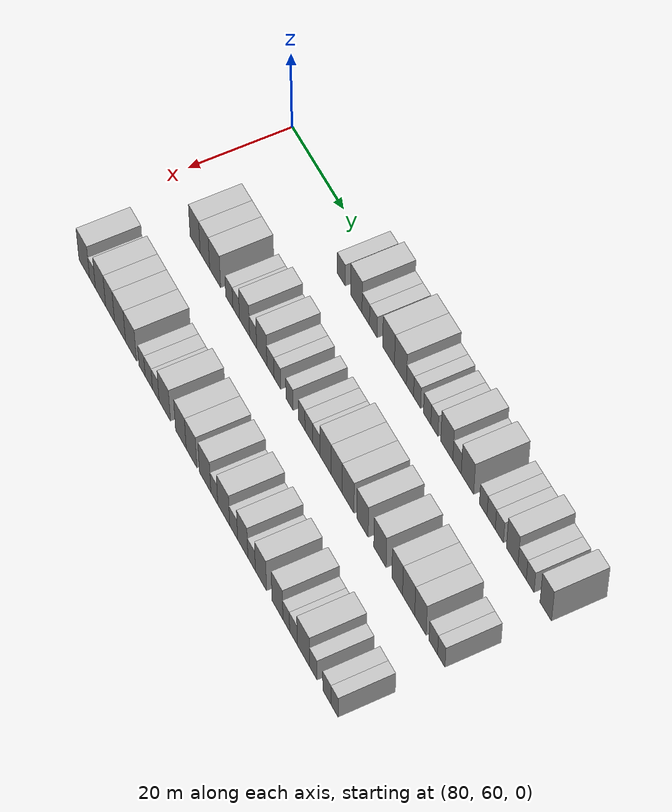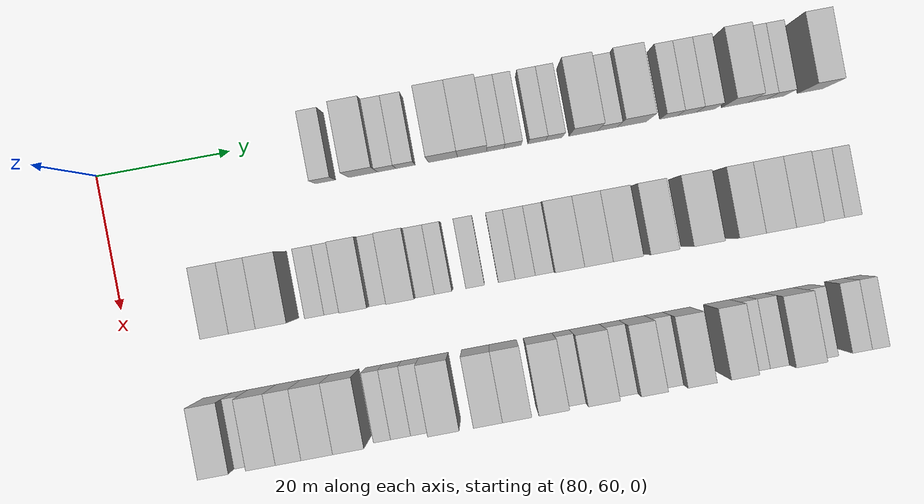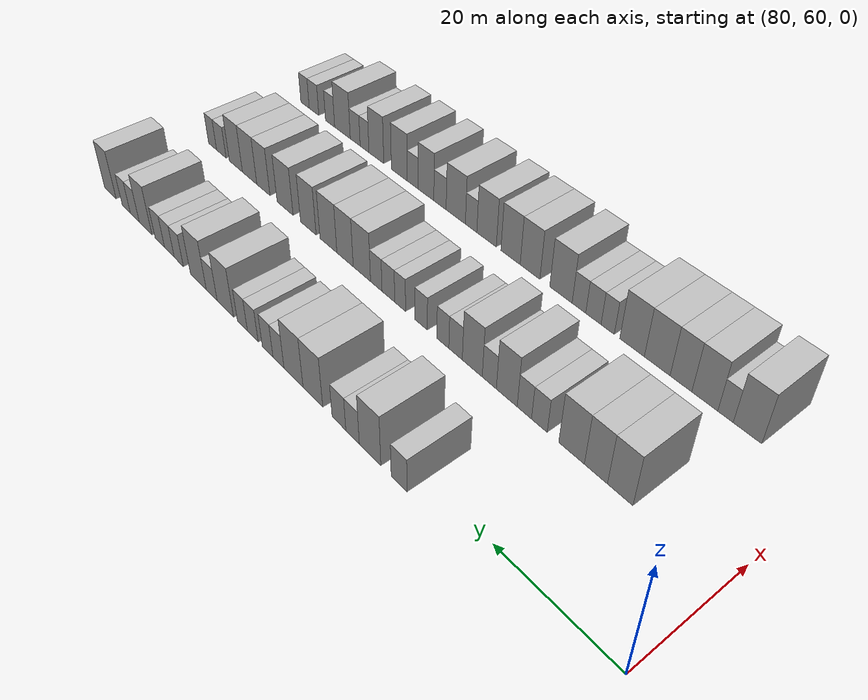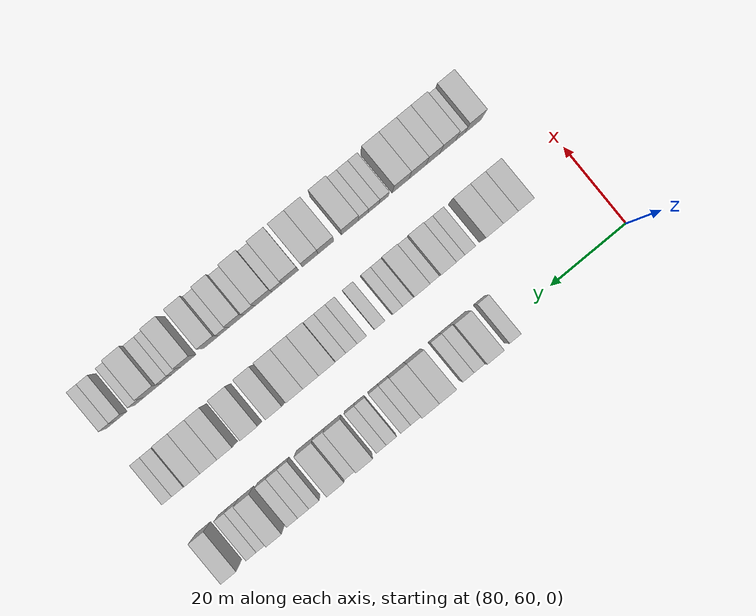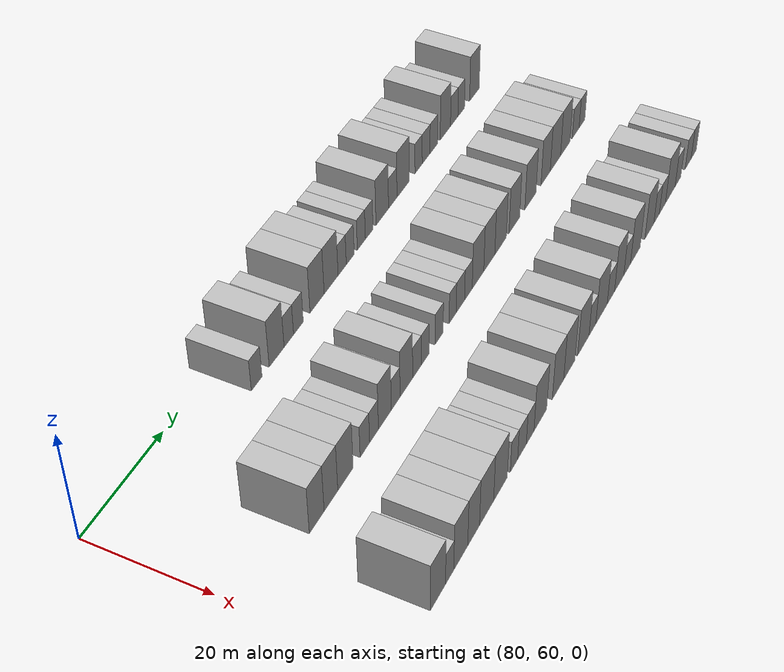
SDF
<sdf version="1.6">
 <world name="default">
  <model name="building_637">
   <static>1</static>
   <pose>82.0000 93.1018 0 0.000000 0.000000 0.000000</pose>
   <link name="link">
    <pose>0 0 3.00 0 0 0</pose>
    <collision name="collision"><geometry><box><size>10.0000 2.9825 6.0000</size></box></geometry></collision>
    <visual name="visual">
     <cast_shadows>0</cast_shadows>
     <geometry><box><size>10.0000 2.9825 6.0000</size></box></geometry>
     <material>
      <script>
       <uri>model://HANNAS_wall/materials/scripts</uri>
       <uri>model://HANNAS_wall/materials/textures</uri>
       <name>vrc/HANNAS_wall</name>
      </script>
     </material>
    </visual>
   </link>
  </model>
  <model name="building_638">
   <static>1</static>
   <pose>82.0000 98.7321 0 0.000000 0.000000 0.000000</pose>
   <link name="link">
    <pose>0 0 4.50 0 0 0</pose>
    <collision name="collision"><geometry><box><size>10.0000 4.2781 9.0000</size></box></geometry></collision>
    <visual name="visual">
     <cast_shadows>0</cast_shadows>
     <geometry><box><size>10.0000 4.2781 9.0000</size></box></geometry>
     <material>
      <script>
       <uri>model://HANNAS_wall/materials/scripts</uri>
       <uri>model://HANNAS_wall/materials/textures</uri>
       <name>vrc/HANNAS_wall</name>
      </script>
     </material>
    </visual>
   </link>
  </model>
  <model name="building_639">
   <static>1</static>
   <pose>82.0000 102.2489 0 0.000000 0.000000 0.000000</pose>
   <link name="link">
    <pose>0 0 3.00 0 0 0</pose>
    <collision name="collision"><geometry><box><size>10.0000 2.7553 6.0000</size></box></geometry></collision>
    <visual name="visual">
     <cast_shadows>0</cast_shadows>
     <geometry><box><size>10.0000 2.7553 6.0000</size></box></geometry>
     <material>
      <script>
       <uri>model://HANNAS_wall/materials/scripts</uri>
       <uri>model://HANNAS_wall/materials/textures</uri>
       <name>vrc/HANNAS_wall</name>
      </script>
     </material>
    </visual>
   </link>
  </model>
  <model name="building_640">
   <static>1</static>
   <pose>82.0000 105.0680 0 0.000000 0.000000 0.000000</pose>
   <link name="link">
    <pose>0 0 3.00 0 0 0</pose>
    <collision name="collision"><geometry><box><size>10.0000 2.8829 6.0000</size></box></geometry></collision>
    <visual name="visual">
     <cast_shadows>0</cast_shadows>
     <geometry><box><size>10.0000 2.8829 6.0000</size></box></geometry>
     <material>
      <script>
       <uri>model://HANNAS_wall/materials/scripts</uri>
       <uri>model://HANNAS_wall/materials/textures</uri>
       <name>vrc/HANNAS_wall</name>
      </script>
     </material>
    </visual>
   </link>
  </model>
  <model name="building_641">
   <static>1</static>
   <pose>82.0000 110.6773 0 0.000000 0.000000 0.000000</pose>
   <link name="link">
    <pose>0 0 4.50 0 0 0</pose>
    <collision name="collision"><geometry><box><size>10.0000 4.3356 9.0000</size></box></geometry></collision>
    <visual name="visual">
     <cast_shadows>0</cast_shadows>
     <geometry><box><size>10.0000 4.3356 9.0000</size></box></geometry>
     <material>
      <script>
       <uri>model://HANNAS_wall/materials/scripts</uri>
       <uri>model://HANNAS_wall/materials/textures</uri>
       <name>vrc/HANNAS_wall</name>
      </script>
     </material>
    </visual>
   </link>
  </model>
  <model name="building_642">
   <static>1</static>
   <pose>82.0000 115.0197 0 0.000000 0.000000 0.000000</pose>
   <link name="link">
    <pose>0 0 4.50 0 0 0</pose>
    <collision name="collision"><geometry><box><size>10.0000 4.3493 9.0000</size></box></geometry></collision>
    <visual name="visual">
     <cast_shadows>0</cast_shadows>
     <geometry><box><size>10.0000 4.3493 9.0000</size></box></geometry>
     <material>
      <script>
       <uri>model://HANNAS_wall/materials/scripts</uri>
       <uri>model://HANNAS_wall/materials/textures</uri>
       <name>vrc/HANNAS_wall</name>
      </script>
     </material>
    </visual>
   </link>
  </model>
  <model name="building_643">
   <static>1</static>
   <pose>82.0000 118.4936 0 0.000000 0.000000 0.000000</pose>
   <link name="link">
    <pose>0 0 3.00 0 0 0</pose>
    <collision name="collision"><geometry><box><size>10.0000 2.5984 6.0000</size></box></geometry></collision>
    <visual name="visual">
     <cast_shadows>0</cast_shadows>
     <geometry><box><size>10.0000 2.5984 6.0000</size></box></geometry>
     <material>
      <script>
       <uri>model://HANNAS_wall/materials/scripts</uri>
       <uri>model://HANNAS_wall/materials/textures</uri>
       <name>vrc/HANNAS_wall</name>
      </script>
     </material>
    </visual>
   </link>
  </model>
  <model name="building_644">
   <static>1</static>
   <pose>82.0000 121.0690 0 0.000000 0.000000 0.000000</pose>
   <link name="link">
    <pose>0 0 3.00 0 0 0</pose>
    <collision name="collision"><geometry><box><size>10.0000 2.5523 6.0000</size></box></geometry></collision>
    <visual name="visual">
     <cast_shadows>0</cast_shadows>
     <geometry><box><size>10.0000 2.5523 6.0000</size></box></geometry>
     <material>
      <script>
       <uri>model://HANNAS_wall/materials/scripts</uri>
       <uri>model://HANNAS_wall/materials/textures</uri>
       <name>vrc/HANNAS_wall</name>
      </script>
     </material>
    </visual>
   </link>
  </model>
  <model name="building_645">
   <static>1</static>
   <pose>82.0000 124.6722 0 0.000000 0.000000 0.000000</pose>
   <link name="link">
    <pose>0 0 3.00 0 0 0</pose>
    <collision name="collision"><geometry><box><size>10.0000 2.6542 6.0000</size></box></geometry></collision>
    <visual name="visual">
     <cast_shadows>0</cast_shadows>
     <geometry><box><size>10.0000 2.6542 6.0000</size></box></geometry>
     <material>
      <script>
       <uri>model://HANNAS_wall/materials/scripts</uri>
       <uri>model://HANNAS_wall/materials/textures</uri>
       <name>vrc/HANNAS_wall</name>
      </script>
     </material>
    </visual>
   </link>
  </model>
  <model name="building_646">
   <static>1</static>
   <pose>82.0000 127.2602 0 0.000000 0.000000 0.000000</pose>
   <link name="link">
    <pose>0 0 3.00 0 0 0</pose>
    <collision name="collision"><geometry><box><size>10.0000 2.5218 6.0000</size></box></geometry></collision>
    <visual name="visual">
     <cast_shadows>0</cast_shadows>
     <geometry><box><size>10.0000 2.5218 6.0000</size></box></geometry>
     <material>
      <script>
       <uri>model://HANNAS_wall/materials/scripts</uri>
       <uri>model://HANNAS_wall/materials/textures</uri>
       <name>vrc/HANNAS_wall</name>
      </script>
     </material>
    </visual>
   </link>
  </model>
  <model name="building_647">
   <static>1</static>
   <pose>82.0000 131.6609 0 0.000000 0.000000 0.000000</pose>
   <link name="link">
    <pose>0 0 4.50 0 0 0</pose>
    <collision name="collision"><geometry><box><size>10.0000 4.2797 9.0000</size></box></geometry></collision>
    <visual name="visual">
     <cast_shadows>0</cast_shadows>
     <geometry><box><size>10.0000 4.2797 9.0000</size></box></geometry>
     <material>
      <script>
       <uri>model://HANNAS_wall/materials/scripts</uri>
       <uri>model://HANNAS_wall/materials/textures</uri>
       <name>vrc/HANNAS_wall</name>
      </script>
     </material>
    </visual>
   </link>
  </model>
  <model name="building_648">
   <static>1</static>
   <pose>82.0000 135.2643 0 0.000000 0.000000 0.000000</pose>
   <link name="link">
    <pose>0 0 3.00 0 0 0</pose>
    <collision name="collision"><geometry><box><size>10.0000 2.9271 6.0000</size></box></geometry></collision>
    <visual name="visual">
     <cast_shadows>0</cast_shadows>
     <geometry><box><size>10.0000 2.9271 6.0000</size></box></geometry>
     <material>
      <script>
       <uri>model://HANNAS_wall/materials/scripts</uri>
       <uri>model://HANNAS_wall/materials/textures</uri>
       <name>vrc/HANNAS_wall</name>
      </script>
     </material>
    </visual>
   </link>
  </model>
  <model name="building_649">
   <static>1</static>
   <pose>82.0000 138.9068 0 0.000000 0.000000 0.000000</pose>
   <link name="link">
    <pose>0 0 4.50 0 0 0</pose>
    <collision name="collision"><geometry><box><size>10.0000 4.3579 9.0000</size></box></geometry></collision>
    <visual name="visual">
     <cast_shadows>0</cast_shadows>
     <geometry><box><size>10.0000 4.3579 9.0000</size></box></geometry>
     <material>
      <script>
       <uri>model://HANNAS_wall/materials/scripts</uri>
       <uri>model://HANNAS_wall/materials/textures</uri>
       <name>vrc/HANNAS_wall</name>
      </script>
     </material>
    </visual>
   </link>
  </model>
  <model name="building_650">
   <static>1</static>
   <pose>82.0000 144.3948 0 0.000000 0.000000 0.000000</pose>
   <link name="link">
    <pose>0 0 3.00 0 0 0</pose>
    <collision name="collision"><geometry><box><size>10.0000 2.6181 6.0000</size></box></geometry></collision>
    <visual name="visual">
     <cast_shadows>0</cast_shadows>
     <geometry><box><size>10.0000 2.6181 6.0000</size></box></geometry>
     <material>
      <script>
       <uri>model://HANNAS_wall/materials/scripts</uri>
       <uri>model://HANNAS_wall/materials/textures</uri>
       <name>vrc/HANNAS_wall</name>
      </script>
     </material>
    </visual>
   </link>
  </model>
  <model name="building_651">
   <static>1</static>
   <pose>82.0000 147.1293 0 0.000000 0.000000 0.000000</pose>
   <link name="link">
    <pose>0 0 3.00 0 0 0</pose>
    <collision name="collision"><geometry><box><size>10.0000 2.8510 6.0000</size></box></geometry></collision>
    <visual name="visual">
     <cast_shadows>0</cast_shadows>
     <geometry><box><size>10.0000 2.8510 6.0000</size></box></geometry>
     <material>
      <script>
       <uri>model://HANNAS_wall/materials/scripts</uri>
       <uri>model://HANNAS_wall/materials/textures</uri>
       <name>vrc/HANNAS_wall</name>
      </script>
     </material>
    </visual>
   </link>
  </model>
  <model name="building_652">
   <static>1</static>
   <pose>82.0000 149.9562 0 0.000000 0.000000 0.000000</pose>
   <link name="link">
    <pose>0 0 3.00 0 0 0</pose>
    <collision name="collision"><geometry><box><size>10.0000 2.8028 6.0000</size></box></geometry></collision>
    <visual name="visual">
     <cast_shadows>0</cast_shadows>
     <geometry><box><size>10.0000 2.8028 6.0000</size></box></geometry>
     <material>
      <script>
       <uri>model://HANNAS_wall/materials/scripts</uri>
       <uri>model://HANNAS_wall/materials/textures</uri>
       <name>vrc/HANNAS_wall</name>
      </script>
     </material>
    </visual>
   </link>
  </model>
  <model name="building_653">
   <static>1</static>
   <pose>82.0000 154.3159 0 0.000000 0.000000 0.000000</pose>
   <link name="link">
    <pose>0 0 4.50 0 0 0</pose>
    <collision name="collision"><geometry><box><size>10.0000 3.9167 9.0000</size></box></geometry></collision>
    <visual name="visual">
     <cast_shadows>0</cast_shadows>
     <geometry><box><size>10.0000 3.9167 9.0000</size></box></geometry>
     <material>
      <script>
       <uri>model://HANNAS_wall/materials/scripts</uri>
       <uri>model://HANNAS_wall/materials/textures</uri>
       <name>vrc/HANNAS_wall</name>
      </script>
     </material>
    </visual>
   </link>
  </model>
  <model name="building_654">
   <static>1</static>
   <pose>82.0000 157.6929 0 0.000000 0.000000 0.000000</pose>
   <link name="link">
    <pose>0 0 3.00 0 0 0</pose>
    <collision name="collision"><geometry><box><size>10.0000 2.8373 6.0000</size></box></geometry></collision>
    <visual name="visual">
     <cast_shadows>0</cast_shadows>
     <geometry><box><size>10.0000 2.8373 6.0000</size></box></geometry>
     <material>
      <script>
       <uri>model://HANNAS_wall/materials/scripts</uri>
       <uri>model://HANNAS_wall/materials/textures</uri>
       <name>vrc/HANNAS_wall</name>
      </script>
     </material>
    </visual>
   </link>
  </model>
  <model name="building_655">
   <static>1</static>
   <pose>82.0000 160.4118 0 0.000000 0.000000 0.000000</pose>
   <link name="link">
    <pose>0 0 3.00 0 0 0</pose>
    <collision name="collision"><geometry><box><size>10.0000 2.6006 6.0000</size></box></geometry></collision>
    <visual name="visual">
     <cast_shadows>0</cast_shadows>
     <geometry><box><size>10.0000 2.6006 6.0000</size></box></geometry>
     <material>
      <script>
       <uri>model://HANNAS_wall/materials/scripts</uri>
       <uri>model://HANNAS_wall/materials/textures</uri>
       <name>vrc/HANNAS_wall</name>
      </script>
     </material>
    </visual>
   </link>
  </model>
  <model name="building_656">
   <static>1</static>
   <pose>82.0000 165.6346 0 0.000000 0.000000 0.000000</pose>
   <link name="link">
    <pose>0 0 4.50 0 0 0</pose>
    <collision name="collision"><geometry><box><size>10.0000 3.8449 9.0000</size></box></geometry></collision>
    <visual name="visual">
     <cast_shadows>0</cast_shadows>
     <geometry><box><size>10.0000 3.8449 9.0000</size></box></geometry>
     <material>
      <script>
       <uri>model://HANNAS_wall/materials/scripts</uri>
       <uri>model://HANNAS_wall/materials/textures</uri>
       <name>vrc/HANNAS_wall</name>
      </script>
     </material>
    </visual>
   </link>
  </model>
  <model name="building_811">
   <static>1</static>
   <pose>101.0000 75.4215 0 0.000000 0.000000 0.000000</pose>
   <link name="link">
    <pose>0 0 4.50 0 0 0</pose>
    <collision name="collision"><geometry><box><size>10.0000 4.0051 9.0000</size></box></geometry></collision>
    <visual name="visual">
     <cast_shadows>0</cast_shadows>
     <geometry><box><size>10.0000 4.0051 9.0000</size></box></geometry>
     <material>
      <script>
       <uri>model://HANNAS_wall/materials/scripts</uri>
       <uri>model://HANNAS_wall/materials/textures</uri>
       <name>vrc/HANNAS_wall</name>
      </script>
     </material>
    </visual>
   </link>
  </model>
  <model name="building_812">
   <static>1</static>
   <pose>101.0000 79.3054 0 0.000000 0.000000 0.000000</pose>
   <link name="link">
    <pose>0 0 4.50 0 0 0</pose>
    <collision name="collision"><geometry><box><size>10.0000 3.7627 9.0000</size></box></geometry></collision>
    <visual name="visual">
     <cast_shadows>0</cast_shadows>
     <geometry><box><size>10.0000 3.7627 9.0000</size></box></geometry>
     <material>
      <script>
       <uri>model://HANNAS_wall/materials/scripts</uri>
       <uri>model://HANNAS_wall/materials/textures</uri>
       <name>vrc/HANNAS_wall</name>
      </script>
     </material>
    </visual>
   </link>
  </model>
  <model name="building_813">
   <static>1</static>
   <pose>101.0000 83.3498 0 0.000000 0.000000 0.000000</pose>
   <link name="link">
    <pose>0 0 4.50 0 0 0</pose>
    <collision name="collision"><geometry><box><size>10.0000 4.3261 9.0000</size></box></geometry></collision>
    <visual name="visual">
     <cast_shadows>0</cast_shadows>
     <geometry><box><size>10.0000 4.3261 9.0000</size></box></geometry>
     <material>
      <script>
       <uri>model://HANNAS_wall/materials/scripts</uri>
       <uri>model://HANNAS_wall/materials/textures</uri>
       <name>vrc/HANNAS_wall</name>
      </script>
     </material>
    </visual>
   </link>
  </model>
  <model name="building_814">
   <static>1</static>
   <pose>101.0000 88.9017 0 0.000000 0.000000 0.000000</pose>
   <link name="link">
    <pose>0 0 3.00 0 0 0</pose>
    <collision name="collision"><geometry><box><size>10.0000 2.7778 6.0000</size></box></geometry></collision>
    <visual name="visual">
     <cast_shadows>0</cast_shadows>
     <geometry><box><size>10.0000 2.7778 6.0000</size></box></geometry>
     <material>
      <script>
       <uri>model://HANNAS_wall/materials/scripts</uri>
       <uri>model://HANNAS_wall/materials/textures</uri>
       <name>vrc/HANNAS_wall</name>
      </script>
     </material>
    </visual>
   </link>
  </model>
  <model name="building_815">
   <static>1</static>
   <pose>101.0000 91.5942 0 0.000000 0.000000 0.000000</pose>
   <link name="link">
    <pose>0 0 3.00 0 0 0</pose>
    <collision name="collision"><geometry><box><size>10.0000 2.6072 6.0000</size></box></geometry></collision>
    <visual name="visual">
     <cast_shadows>0</cast_shadows>
     <geometry><box><size>10.0000 2.6072 6.0000</size></box></geometry>
     <material>
      <script>
       <uri>model://HANNAS_wall/materials/scripts</uri>
       <uri>model://HANNAS_wall/materials/textures</uri>
       <name>vrc/HANNAS_wall</name>
      </script>
     </material>
    </visual>
   </link>
  </model>
  <model name="building_816">
   <static>1</static>
   <pose>101.0000 94.8370 0 0.000000 0.000000 0.000000</pose>
   <link name="link">
    <pose>0 0 4.50 0 0 0</pose>
    <collision name="collision"><geometry><box><size>10.0000 3.8783 9.0000</size></box></geometry></collision>
    <visual name="visual">
     <cast_shadows>0</cast_shadows>
     <geometry><box><size>10.0000 3.8783 9.0000</size></box></geometry>
     <material>
      <script>
       <uri>model://HANNAS_wall/materials/scripts</uri>
       <uri>model://HANNAS_wall/materials/textures</uri>
       <name>vrc/HANNAS_wall</name>
      </script>
     </material>
    </visual>
   </link>
  </model>
  <model name="building_817">
   <static>1</static>
   <pose>101.0000 98.1280 0 0.000000 0.000000 0.000000</pose>
   <link name="link">
    <pose>0 0 3.00 0 0 0</pose>
    <collision name="collision"><geometry><box><size>10.0000 2.7037 6.0000</size></box></geometry></collision>
    <visual name="visual">
     <cast_shadows>0</cast_shadows>
     <geometry><box><size>10.0000 2.7037 6.0000</size></box></geometry>
     <material>
      <script>
       <uri>model://HANNAS_wall/materials/scripts</uri>
       <uri>model://HANNAS_wall/materials/textures</uri>
       <name>vrc/HANNAS_wall</name>
      </script>
     </material>
    </visual>
   </link>
  </model>
  <model name="building_818">
   <static>1</static>
   <pose>101.0000 101.4447 0 0.000000 0.000000 0.000000</pose>
   <link name="link">
    <pose>0 0 4.50 0 0 0</pose>
    <collision name="collision"><geometry><box><size>10.0000 3.9298 9.0000</size></box></geometry></collision>
    <visual name="visual">
     <cast_shadows>0</cast_shadows>
     <geometry><box><size>10.0000 3.9298 9.0000</size></box></geometry>
     <material>
      <script>
       <uri>model://HANNAS_wall/materials/scripts</uri>
       <uri>model://HANNAS_wall/materials/textures</uri>
       <name>vrc/HANNAS_wall</name>
      </script>
     </material>
    </visual>
   </link>
  </model>
  <model name="building_819">
   <static>1</static>
   <pose>101.0000 104.7713 0 0.000000 0.000000 0.000000</pose>
   <link name="link">
    <pose>0 0 3.00 0 0 0</pose>
    <collision name="collision"><geometry><box><size>10.0000 2.7233 6.0000</size></box></geometry></collision>
    <visual name="visual">
     <cast_shadows>0</cast_shadows>
     <geometry><box><size>10.0000 2.7233 6.0000</size></box></geometry>
     <material>
      <script>
       <uri>model://HANNAS_wall/materials/scripts</uri>
       <uri>model://HANNAS_wall/materials/textures</uri>
       <name>vrc/HANNAS_wall</name>
      </script>
     </material>
    </visual>
   </link>
  </model>
  <model name="building_820">
   <static>1</static>
   <pose>101.0000 107.3770 0 0.000000 0.000000 0.000000</pose>
   <link name="link">
    <pose>0 0 3.00 0 0 0</pose>
    <collision name="collision"><geometry><box><size>10.0000 2.4881 6.0000</size></box></geometry></collision>
    <visual name="visual">
     <cast_shadows>0</cast_shadows>
     <geometry><box><size>10.0000 2.4881 6.0000</size></box></geometry>
     <material>
      <script>
       <uri>model://HANNAS_wall/materials/scripts</uri>
       <uri>model://HANNAS_wall/materials/textures</uri>
       <name>vrc/HANNAS_wall</name>
      </script>
     </material>
    </visual>
   </link>
  </model>
  <model name="building_821">
   <static>1</static>
   <pose>101.0000 111.9665 0 0.000000 0.000000 0.000000</pose>
   <link name="link">
    <pose>0 0 3.00 0 0 0</pose>
    <collision name="collision"><geometry><box><size>10.0000 2.6909 6.0000</size></box></geometry></collision>
    <visual name="visual">
     <cast_shadows>0</cast_shadows>
     <geometry><box><size>10.0000 2.6909 6.0000</size></box></geometry>
     <material>
      <script>
       <uri>model://HANNAS_wall/materials/scripts</uri>
       <uri>model://HANNAS_wall/materials/textures</uri>
       <name>vrc/HANNAS_wall</name>
      </script>
     </material>
    </visual>
   </link>
  </model>
  <model name="building_822">
   <static>1</static>
   <pose>101.0000 116.5160 0 0.000000 0.000000 0.000000</pose>
   <link name="link">
    <pose>0 0 3.00 0 0 0</pose>
    <collision name="collision"><geometry><box><size>10.0000 2.4082 6.0000</size></box></geometry></collision>
    <visual name="visual">
     <cast_shadows>0</cast_shadows>
     <geometry><box><size>10.0000 2.4082 6.0000</size></box></geometry>
     <material>
      <script>
       <uri>model://HANNAS_wall/materials/scripts</uri>
       <uri>model://HANNAS_wall/materials/textures</uri>
       <name>vrc/HANNAS_wall</name>
      </script>
     </material>
    </visual>
   </link>
  </model>
  <model name="building_823">
   <static>1</static>
   <pose>101.0000 119.1605 0 0.000000 0.000000 0.000000</pose>
   <link name="link">
    <pose>0 0 3.00 0 0 0</pose>
    <collision name="collision"><geometry><box><size>10.0000 2.8808 6.0000</size></box></geometry></collision>
    <visual name="visual">
     <cast_shadows>0</cast_shadows>
     <geometry><box><size>10.0000 2.8808 6.0000</size></box></geometry>
     <material>
      <script>
       <uri>model://HANNAS_wall/materials/scripts</uri>
       <uri>model://HANNAS_wall/materials/textures</uri>
       <name>vrc/HANNAS_wall</name>
      </script>
     </material>
    </visual>
   </link>
  </model>
  <model name="building_824">
   <static>1</static>
   <pose>101.0000 121.9296 0 0.000000 0.000000 0.000000</pose>
   <link name="link">
    <pose>0 0 3.00 0 0 0</pose>
    <collision name="collision"><geometry><box><size>10.0000 2.6574 6.0000</size></box></geometry></collision>
    <visual name="visual">
     <cast_shadows>0</cast_shadows>
     <geometry><box><size>10.0000 2.6574 6.0000</size></box></geometry>
     <material>
      <script>
       <uri>model://HANNAS_wall/materials/scripts</uri>
       <uri>model://HANNAS_wall/materials/textures</uri>
       <name>vrc/HANNAS_wall</name>
      </script>
     </material>
    </visual>
   </link>
  </model>
  <model name="building_825">
   <static>1</static>
   <pose>101.0000 125.3163 0 0.000000 0.000000 0.000000</pose>
   <link name="link">
    <pose>0 0 4.50 0 0 0</pose>
    <collision name="collision"><geometry><box><size>10.0000 4.1160 9.0000</size></box></geometry></collision>
    <visual name="visual">
     <cast_shadows>0</cast_shadows>
     <geometry><box><size>10.0000 4.1160 9.0000</size></box></geometry>
     <material>
      <script>
       <uri>model://HANNAS_wall/materials/scripts</uri>
       <uri>model://HANNAS_wall/materials/textures</uri>
       <name>vrc/HANNAS_wall</name>
      </script>
     </material>
    </visual>
   </link>
  </model>
  <model name="building_826">
   <static>1</static>
   <pose>101.0000 129.3767 0 0.000000 0.000000 0.000000</pose>
   <link name="link">
    <pose>0 0 4.50 0 0 0</pose>
    <collision name="collision"><geometry><box><size>10.0000 4.0047 9.0000</size></box></geometry></collision>
    <visual name="visual">
     <cast_shadows>0</cast_shadows>
     <geometry><box><size>10.0000 4.0047 9.0000</size></box></geometry>
     <material>
      <script>
       <uri>model://HANNAS_wall/materials/scripts</uri>
       <uri>model://HANNAS_wall/materials/textures</uri>
       <name>vrc/HANNAS_wall</name>
      </script>
     </material>
    </visual>
   </link>
  </model>
  <model name="building_827">
   <static>1</static>
   <pose>101.0000 133.5071 0 0.000000 0.000000 0.000000</pose>
   <link name="link">
    <pose>0 0 4.50 0 0 0</pose>
    <collision name="collision"><geometry><box><size>10.0000 4.2560 9.0000</size></box></geometry></collision>
    <visual name="visual">
     <cast_shadows>0</cast_shadows>
     <geometry><box><size>10.0000 4.2560 9.0000</size></box></geometry>
     <material>
      <script>
       <uri>model://HANNAS_wall/materials/scripts</uri>
       <uri>model://HANNAS_wall/materials/textures</uri>
       <name>vrc/HANNAS_wall</name>
      </script>
     </material>
    </visual>
   </link>
  </model>
  <model name="building_828">
   <static>1</static>
   <pose>101.0000 138.6717 0 0.000000 0.000000 0.000000</pose>
   <link name="link">
    <pose>0 0 4.50 0 0 0</pose>
    <collision name="collision"><geometry><box><size>10.0000 4.0731 9.0000</size></box></geometry></collision>
    <visual name="visual">
     <cast_shadows>0</cast_shadows>
     <geometry><box><size>10.0000 4.0731 9.0000</size></box></geometry>
     <material>
      <script>
       <uri>model://HANNAS_wall/materials/scripts</uri>
       <uri>model://HANNAS_wall/materials/textures</uri>
       <name>vrc/HANNAS_wall</name>
      </script>
     </material>
    </visual>
   </link>
  </model>
  <model name="building_829">
   <static>1</static>
   <pose>101.0000 144.8953 0 0.000000 0.000000 0.000000</pose>
   <link name="link">
    <pose>0 0 4.50 0 0 0</pose>
    <collision name="collision"><geometry><box><size>10.0000 4.3741 9.0000</size></box></geometry></collision>
    <visual name="visual">
     <cast_shadows>0</cast_shadows>
     <geometry><box><size>10.0000 4.3741 9.0000</size></box></geometry>
     <material>
      <script>
       <uri>model://HANNAS_wall/materials/scripts</uri>
       <uri>model://HANNAS_wall/materials/textures</uri>
       <name>vrc/HANNAS_wall</name>
      </script>
     </material>
    </visual>
   </link>
  </model>
  <model name="building_830">
   <static>1</static>
   <pose>101.0000 150.9575 0 0.000000 0.000000 0.000000</pose>
   <link name="link">
    <pose>0 0 4.50 0 0 0</pose>
    <collision name="collision"><geometry><box><size>10.0000 3.7503 9.0000</size></box></geometry></collision>
    <visual name="visual">
     <cast_shadows>0</cast_shadows>
     <geometry><box><size>10.0000 3.7503 9.0000</size></box></geometry>
     <material>
      <script>
       <uri>model://HANNAS_wall/materials/scripts</uri>
       <uri>model://HANNAS_wall/materials/textures</uri>
       <name>vrc/HANNAS_wall</name>
      </script>
     </material>
    </visual>
   </link>
  </model>
  <model name="building_831">
   <static>1</static>
   <pose>101.0000 154.9460 0 0.000000 0.000000 0.000000</pose>
   <link name="link">
    <pose>0 0 4.50 0 0 0</pose>
    <collision name="collision"><geometry><box><size>10.0000 4.2267 9.0000</size></box></geometry></collision>
    <visual name="visual">
     <cast_shadows>0</cast_shadows>
     <geometry><box><size>10.0000 4.2267 9.0000</size></box></geometry>
     <material>
      <script>
       <uri>model://HANNAS_wall/materials/scripts</uri>
       <uri>model://HANNAS_wall/materials/textures</uri>
       <name>vrc/HANNAS_wall</name>
      </script>
     </material>
    </visual>
   </link>
  </model>
  <model name="building_832">
   <static>1</static>
   <pose>101.0000 159.0292 0 0.000000 0.000000 0.000000</pose>
   <link name="link">
    <pose>0 0 4.50 0 0 0</pose>
    <collision name="collision"><geometry><box><size>10.0000 3.9398 9.0000</size></box></geometry></collision>
    <visual name="visual">
     <cast_shadows>0</cast_shadows>
     <geometry><box><size>10.0000 3.9398 9.0000</size></box></geometry>
     <material>
      <script>
       <uri>model://HANNAS_wall/materials/scripts</uri>
       <uri>model://HANNAS_wall/materials/textures</uri>
       <name>vrc/HANNAS_wall</name>
      </script>
     </material>
    </visual>
   </link>
  </model>
  <model name="building_833">
   <static>1</static>
   <pose>101.0000 163.4753 0 0.000000 0.000000 0.000000</pose>
   <link name="link">
    <pose>0 0 3.00 0 0 0</pose>
    <collision name="collision"><geometry><box><size>10.0000 2.9524 6.0000</size></box></geometry></collision>
    <visual name="visual">
     <cast_shadows>0</cast_shadows>
     <geometry><box><size>10.0000 2.9524 6.0000</size></box></geometry>
     <material>
      <script>
       <uri>model://HANNAS_wall/materials/scripts</uri>
       <uri>model://HANNAS_wall/materials/textures</uri>
       <name>vrc/HANNAS_wall</name>
      </script>
     </material>
    </visual>
   </link>
  </model>
  <model name="building_834">
   <static>1</static>
   <pose>101.0000 166.2065 0 0.000000 0.000000 0.000000</pose>
   <link name="link">
    <pose>0 0 3.00 0 0 0</pose>
    <collision name="collision"><geometry><box><size>10.0000 2.5101 6.0000</size></box></geometry></collision>
    <visual name="visual">
     <cast_shadows>0</cast_shadows>
     <geometry><box><size>10.0000 2.5101 6.0000</size></box></geometry>
     <material>
      <script>
       <uri>model://HANNAS_wall/materials/scripts</uri>
       <uri>model://HANNAS_wall/materials/textures</uri>
       <name>vrc/HANNAS_wall</name>
      </script>
     </material>
    </visual>
   </link>
  </model>
  <model name="building_983">
   <static>1</static>
   <pose>120.0000 71.6755 0 0.000000 0.000000 0.000000</pose>
   <link name="link">
    <pose>0 0 4.50 0 0 0</pose>
    <collision name="collision"><geometry><box><size>10.0000 4.3382 9.0000</size></box></geometry></collision>
    <visual name="visual">
     <cast_shadows>0</cast_shadows>
     <geometry><box><size>10.0000 4.3382 9.0000</size></box></geometry>
     <material>
      <script>
       <uri>model://HANNAS_wall/materials/scripts</uri>
       <uri>model://HANNAS_wall/materials/textures</uri>
       <name>vrc/HANNAS_wall</name>
      </script>
     </material>
    </visual>
   </link>
  </model>
  <model name="building_984">
   <static>1</static>
   <pose>120.0000 75.0530 0 0.000000 0.000000 0.000000</pose>
   <link name="link">
    <pose>0 0 3.00 0 0 0</pose>
    <collision name="collision"><geometry><box><size>10.0000 2.4168 6.0000</size></box></geometry></collision>
    <visual name="visual">
     <cast_shadows>0</cast_shadows>
     <geometry><box><size>10.0000 2.4168 6.0000</size></box></geometry>
     <material>
      <script>
       <uri>model://HANNAS_wall/materials/scripts</uri>
       <uri>model://HANNAS_wall/materials/textures</uri>
       <name>vrc/HANNAS_wall</name>
      </script>
     </material>
    </visual>
   </link>
  </model>
  <model name="building_985">
   <static>1</static>
   <pose>120.0000 78.3462 0 0.000000 0.000000 0.000000</pose>
   <link name="link">
    <pose>0 0 4.50 0 0 0</pose>
    <collision name="collision"><geometry><box><size>10.0000 4.1695 9.0000</size></box></geometry></collision>
    <visual name="visual">
     <cast_shadows>0</cast_shadows>
     <geometry><box><size>10.0000 4.1695 9.0000</size></box></geometry>
     <material>
      <script>
       <uri>model://HANNAS_wall/materials/scripts</uri>
       <uri>model://HANNAS_wall/materials/textures</uri>
       <name>vrc/HANNAS_wall</name>
      </script>
     </material>
    </visual>
   </link>
  </model>
  <model name="building_986">
   <static>1</static>
   <pose>120.0000 82.2348 0 0.000000 0.000000 0.000000</pose>
   <link name="link">
    <pose>0 0 4.50 0 0 0</pose>
    <collision name="collision"><geometry><box><size>10.0000 3.6077 9.0000</size></box></geometry></collision>
    <visual name="visual">
     <cast_shadows>0</cast_shadows>
     <geometry><box><size>10.0000 3.6077 9.0000</size></box></geometry>
     <material>
      <script>
       <uri>model://HANNAS_wall/materials/scripts</uri>
       <uri>model://HANNAS_wall/materials/textures</uri>
       <name>vrc/HANNAS_wall</name>
      </script>
     </material>
    </visual>
   </link>
  </model>
  <model name="building_987">
   <static>1</static>
   <pose>120.0000 86.2489 0 0.000000 0.000000 0.000000</pose>
   <link name="link">
    <pose>0 0 4.50 0 0 0</pose>
    <collision name="collision"><geometry><box><size>10.0000 4.4206 9.0000</size></box></geometry></collision>
    <visual name="visual">
     <cast_shadows>0</cast_shadows>
     <geometry><box><size>10.0000 4.4206 9.0000</size></box></geometry>
     <material>
      <script>
       <uri>model://HANNAS_wall/materials/scripts</uri>
       <uri>model://HANNAS_wall/materials/textures</uri>
       <name>vrc/HANNAS_wall</name>
      </script>
     </material>
    </visual>
   </link>
  </model>
  <model name="building_988">
   <static>1</static>
   <pose>120.0000 90.6453 0 0.000000 0.000000 0.000000</pose>
   <link name="link">
    <pose>0 0 4.50 0 0 0</pose>
    <collision name="collision"><geometry><box><size>10.0000 4.3722 9.0000</size></box></geometry></collision>
    <visual name="visual">
     <cast_shadows>0</cast_shadows>
     <geometry><box><size>10.0000 4.3722 9.0000</size></box></geometry>
     <material>
      <script>
       <uri>model://HANNAS_wall/materials/scripts</uri>
       <uri>model://HANNAS_wall/materials/textures</uri>
       <name>vrc/HANNAS_wall</name>
      </script>
     </material>
    </visual>
   </link>
  </model>
  <model name="building_989">
   <static>1</static>
   <pose>120.0000 95.0532 0 0.000000 0.000000 0.000000</pose>
   <link name="link">
    <pose>0 0 3.00 0 0 0</pose>
    <collision name="collision"><geometry><box><size>10.0000 2.4437 6.0000</size></box></geometry></collision>
    <visual name="visual">
     <cast_shadows>0</cast_shadows>
     <geometry><box><size>10.0000 2.4437 6.0000</size></box></geometry>
     <material>
      <script>
       <uri>model://HANNAS_wall/materials/scripts</uri>
       <uri>model://HANNAS_wall/materials/textures</uri>
       <name>vrc/HANNAS_wall</name>
      </script>
     </material>
    </visual>
   </link>
  </model>
  <model name="building_990">
   <static>1</static>
   <pose>120.0000 97.7137 0 0.000000 0.000000 0.000000</pose>
   <link name="link">
    <pose>0 0 3.00 0 0 0</pose>
    <collision name="collision"><geometry><box><size>10.0000 2.8773 6.0000</size></box></geometry></collision>
    <visual name="visual">
     <cast_shadows>0</cast_shadows>
     <geometry><box><size>10.0000 2.8773 6.0000</size></box></geometry>
     <material>
      <script>
       <uri>model://HANNAS_wall/materials/scripts</uri>
       <uri>model://HANNAS_wall/materials/textures</uri>
       <name>vrc/HANNAS_wall</name>
      </script>
     </material>
    </visual>
   </link>
  </model>
  <model name="building_991">
   <static>1</static>
   <pose>120.0000 100.4633 0 0.000000 0.000000 0.000000</pose>
   <link name="link">
    <pose>0 0 3.00 0 0 0</pose>
    <collision name="collision"><geometry><box><size>10.0000 2.6219 6.0000</size></box></geometry></collision>
    <visual name="visual">
     <cast_shadows>0</cast_shadows>
     <geometry><box><size>10.0000 2.6219 6.0000</size></box></geometry>
     <material>
      <script>
       <uri>model://HANNAS_wall/materials/scripts</uri>
       <uri>model://HANNAS_wall/materials/textures</uri>
       <name>vrc/HANNAS_wall</name>
      </script>
     </material>
    </visual>
   </link>
  </model>
  <model name="building_992">
   <static>1</static>
   <pose>120.0000 103.9808 0 0.000000 0.000000 0.000000</pose>
   <link name="link">
    <pose>0 0 4.50 0 0 0</pose>
    <collision name="collision"><geometry><box><size>10.0000 4.4130 9.0000</size></box></geometry></collision>
    <visual name="visual">
     <cast_shadows>0</cast_shadows>
     <geometry><box><size>10.0000 4.4130 9.0000</size></box></geometry>
     <material>
      <script>
       <uri>model://HANNAS_wall/materials/scripts</uri>
       <uri>model://HANNAS_wall/materials/textures</uri>
       <name>vrc/HANNAS_wall</name>
      </script>
     </material>
    </visual>
   </link>
  </model>
  <model name="building_993">
   <static>1</static>
   <pose>120.0000 110.2316 0 0.000000 0.000000 0.000000</pose>
   <link name="link">
    <pose>0 0 4.50 0 0 0</pose>
    <collision name="collision"><geometry><box><size>10.0000 4.0885 9.0000</size></box></geometry></collision>
    <visual name="visual">
     <cast_shadows>0</cast_shadows>
     <geometry><box><size>10.0000 4.0885 9.0000</size></box></geometry>
     <material>
      <script>
       <uri>model://HANNAS_wall/materials/scripts</uri>
       <uri>model://HANNAS_wall/materials/textures</uri>
       <name>vrc/HANNAS_wall</name>
      </script>
     </material>
    </visual>
   </link>
  </model>
  <model name="building_994">
   <static>1</static>
   <pose>120.0000 114.3344 0 0.000000 0.000000 0.000000</pose>
   <link name="link">
    <pose>0 0 4.50 0 0 0</pose>
    <collision name="collision"><geometry><box><size>10.0000 4.1172 9.0000</size></box></geometry></collision>
    <visual name="visual">
     <cast_shadows>0</cast_shadows>
     <geometry><box><size>10.0000 4.1172 9.0000</size></box></geometry>
     <material>
      <script>
       <uri>model://HANNAS_wall/materials/scripts</uri>
       <uri>model://HANNAS_wall/materials/textures</uri>
       <name>vrc/HANNAS_wall</name>
      </script>
     </material>
    </visual>
   </link>
  </model>
  <model name="building_995">
   <static>1</static>
   <pose>120.0000 119.5480 0 0.000000 0.000000 0.000000</pose>
   <link name="link">
    <pose>0 0 4.50 0 0 0</pose>
    <collision name="collision"><geometry><box><size>10.0000 4.3099 9.0000</size></box></geometry></collision>
    <visual name="visual">
     <cast_shadows>0</cast_shadows>
     <geometry><box><size>10.0000 4.3099 9.0000</size></box></geometry>
     <material>
      <script>
       <uri>model://HANNAS_wall/materials/scripts</uri>
       <uri>model://HANNAS_wall/materials/textures</uri>
       <name>vrc/HANNAS_wall</name>
      </script>
     </material>
    </visual>
   </link>
  </model>
  <model name="building_996">
   <static>1</static>
   <pose>120.0000 123.0082 0 0.000000 0.000000 0.000000</pose>
   <link name="link">
    <pose>0 0 3.00 0 0 0</pose>
    <collision name="collision"><geometry><box><size>10.0000 2.6104 6.0000</size></box></geometry></collision>
    <visual name="visual">
     <cast_shadows>0</cast_shadows>
     <geometry><box><size>10.0000 2.6104 6.0000</size></box></geometry>
     <material>
      <script>
       <uri>model://HANNAS_wall/materials/scripts</uri>
       <uri>model://HANNAS_wall/materials/textures</uri>
       <name>vrc/HANNAS_wall</name>
      </script>
     </material>
    </visual>
   </link>
  </model>
  <model name="building_997">
   <static>1</static>
   <pose>120.0000 126.5604 0 0.000000 0.000000 0.000000</pose>
   <link name="link">
    <pose>0 0 4.50 0 0 0</pose>
    <collision name="collision"><geometry><box><size>10.0000 4.4940 9.0000</size></box></geometry></collision>
    <visual name="visual">
     <cast_shadows>0</cast_shadows>
     <geometry><box><size>10.0000 4.4940 9.0000</size></box></geometry>
     <material>
      <script>
       <uri>model://HANNAS_wall/materials/scripts</uri>
       <uri>model://HANNAS_wall/materials/textures</uri>
       <name>vrc/HANNAS_wall</name>
      </script>
     </material>
    </visual>
   </link>
  </model>
  <model name="building_998">
   <static>1</static>
   <pose>120.0000 130.2779 0 0.000000 0.000000 0.000000</pose>
   <link name="link">
    <pose>0 0 3.00 0 0 0</pose>
    <collision name="collision"><geometry><box><size>10.0000 2.9411 6.0000</size></box></geometry></collision>
    <visual name="visual">
     <cast_shadows>0</cast_shadows>
     <geometry><box><size>10.0000 2.9411 6.0000</size></box></geometry>
     <material>
      <script>
       <uri>model://HANNAS_wall/materials/scripts</uri>
       <uri>model://HANNAS_wall/materials/textures</uri>
       <name>vrc/HANNAS_wall</name>
      </script>
     </material>
    </visual>
   </link>
  </model>
  <model name="building_999">
   <static>1</static>
   <pose>120.0000 133.6498 0 0.000000 0.000000 0.000000</pose>
   <link name="link">
    <pose>0 0 4.50 0 0 0</pose>
    <collision name="collision"><geometry><box><size>10.0000 3.8025 9.0000</size></box></geometry></collision>
    <visual name="visual">
     <cast_shadows>0</cast_shadows>
     <geometry><box><size>10.0000 3.8025 9.0000</size></box></geometry>
     <material>
      <script>
       <uri>model://HANNAS_wall/materials/scripts</uri>
       <uri>model://HANNAS_wall/materials/textures</uri>
       <name>vrc/HANNAS_wall</name>
      </script>
     </material>
    </visual>
   </link>
  </model>
  <model name="building_1000">
   <static>1</static>
   <pose>120.0000 136.9250 0 0.000000 0.000000 0.000000</pose>
   <link name="link">
    <pose>0 0 3.00 0 0 0</pose>
    <collision name="collision"><geometry><box><size>10.0000 2.7480 6.0000</size></box></geometry></collision>
    <visual name="visual">
     <cast_shadows>0</cast_shadows>
     <geometry><box><size>10.0000 2.7480 6.0000</size></box></geometry>
     <material>
      <script>
       <uri>model://HANNAS_wall/materials/scripts</uri>
       <uri>model://HANNAS_wall/materials/textures</uri>
       <name>vrc/HANNAS_wall</name>
      </script>
     </material>
    </visual>
   </link>
  </model>
  <model name="building_1001">
   <static>1</static>
   <pose>120.0000 140.3414 0 0.000000 0.000000 0.000000</pose>
   <link name="link">
    <pose>0 0 4.50 0 0 0</pose>
    <collision name="collision"><geometry><box><size>10.0000 4.0848 9.0000</size></box></geometry></collision>
    <visual name="visual">
     <cast_shadows>0</cast_shadows>
     <geometry><box><size>10.0000 4.0848 9.0000</size></box></geometry>
     <material>
      <script>
       <uri>model://HANNAS_wall/materials/scripts</uri>
       <uri>model://HANNAS_wall/materials/textures</uri>
       <name>vrc/HANNAS_wall</name>
      </script>
     </material>
    </visual>
   </link>
  </model>
  <model name="building_1002">
   <static>1</static>
   <pose>120.0000 146.3585 0 0.000000 0.000000 0.000000</pose>
   <link name="link">
    <pose>0 0 4.50 0 0 0</pose>
    <collision name="collision"><geometry><box><size>10.0000 3.9492 9.0000</size></box></geometry></collision>
    <visual name="visual">
     <cast_shadows>0</cast_shadows>
     <geometry><box><size>10.0000 3.9492 9.0000</size></box></geometry>
     <material>
      <script>
       <uri>model://HANNAS_wall/materials/scripts</uri>
       <uri>model://HANNAS_wall/materials/textures</uri>
       <name>vrc/HANNAS_wall</name>
      </script>
     </material>
    </visual>
   </link>
  </model>
  <model name="building_1003">
   <static>1</static>
   <pose>120.0000 149.5340 0 0.000000 0.000000 0.000000</pose>
   <link name="link">
    <pose>0 0 3.00 0 0 0</pose>
    <collision name="collision"><geometry><box><size>10.0000 2.4019 6.0000</size></box></geometry></collision>
    <visual name="visual">
     <cast_shadows>0</cast_shadows>
     <geometry><box><size>10.0000 2.4019 6.0000</size></box></geometry>
     <material>
      <script>
       <uri>model://HANNAS_wall/materials/scripts</uri>
       <uri>model://HANNAS_wall/materials/textures</uri>
       <name>vrc/HANNAS_wall</name>
      </script>
     </material>
    </visual>
   </link>
  </model>
  <model name="building_1004">
   <static>1</static>
   <pose>120.0000 152.1025 0 0.000000 0.000000 0.000000</pose>
   <link name="link">
    <pose>0 0 3.00 0 0 0</pose>
    <collision name="collision"><geometry><box><size>10.0000 2.7350 6.0000</size></box></geometry></collision>
    <visual name="visual">
     <cast_shadows>0</cast_shadows>
     <geometry><box><size>10.0000 2.7350 6.0000</size></box></geometry>
     <material>
      <script>
       <uri>model://HANNAS_wall/materials/scripts</uri>
       <uri>model://HANNAS_wall/materials/textures</uri>
       <name>vrc/HANNAS_wall</name>
      </script>
     </material>
    </visual>
   </link>
  </model>
  <model name="building_1005">
   <static>1</static>
   <pose>120.0000 155.6786 0 0.000000 0.000000 0.000000</pose>
   <link name="link">
    <pose>0 0 4.50 0 0 0</pose>
    <collision name="collision"><geometry><box><size>10.0000 4.4173 9.0000</size></box></geometry></collision>
    <visual name="visual">
     <cast_shadows>0</cast_shadows>
     <geometry><box><size>10.0000 4.4173 9.0000</size></box></geometry>
     <material>
      <script>
       <uri>model://HANNAS_wall/materials/scripts</uri>
       <uri>model://HANNAS_wall/materials/textures</uri>
       <name>vrc/HANNAS_wall</name>
      </script>
     </material>
    </visual>
   </link>
  </model>
  <model name="building_1006">
   <static>1</static>
   <pose>120.0000 159.2111 0 0.000000 0.000000 0.000000</pose>
   <link name="link">
    <pose>0 0 3.00 0 0 0</pose>
    <collision name="collision"><geometry><box><size>10.0000 2.6476 6.0000</size></box></geometry></collision>
    <visual name="visual">
     <cast_shadows>0</cast_shadows>
     <geometry><box><size>10.0000 2.6476 6.0000</size></box></geometry>
     <material>
      <script>
       <uri>model://HANNAS_wall/materials/scripts</uri>
       <uri>model://HANNAS_wall/materials/textures</uri>
       <name>vrc/HANNAS_wall</name>
      </script>
     </material>
    </visual>
   </link>
  </model>
  <model name="building_1007">
   <static>1</static>
   <pose>120.0000 163.9591 0 0.000000 0.000000 0.000000</pose>
   <link name="link">
    <pose>0 0 3.00 0 0 0</pose>
    <collision name="collision"><geometry><box><size>10.0000 2.8484 6.0000</size></box></geometry></collision>
    <visual name="visual">
     <cast_shadows>0</cast_shadows>
     <geometry><box><size>10.0000 2.8484 6.0000</size></box></geometry>
     <material>
      <script>
       <uri>model://HANNAS_wall/materials/scripts</uri>
       <uri>model://HANNAS_wall/materials/textures</uri>
       <name>vrc/HANNAS_wall</name>
      </script>
     </material>
    </visual>
   </link>
  </model>
  <model name="building_1008">
   <static>1</static>
   <pose>120.0000 166.6475 0 0.000000 0.000000 0.000000</pose>
   <link name="link">
    <pose>0 0 3.00 0 0 0</pose>
    <collision name="collision"><geometry><box><size>10.0000 2.5283 6.0000</size></box></geometry></collision>
    <visual name="visual">
     <cast_shadows>0</cast_shadows>
     <geometry><box><size>10.0000 2.5283 6.0000</size></box></geometry>
     <material>
      <script>
       <uri>model://HANNAS_wall/materials/scripts</uri>
       <uri>model://HANNAS_wall/materials/textures</uri>
       <name>vrc/HANNAS_wall</name>
      </script>
     </material>
    </visual>
   </link>
  </model>
 </world>
</sdf>
